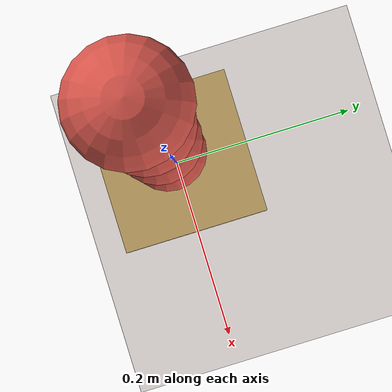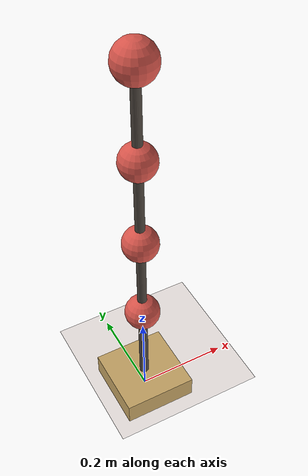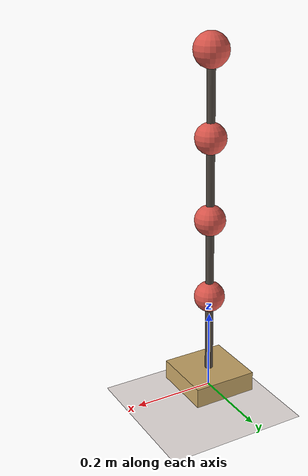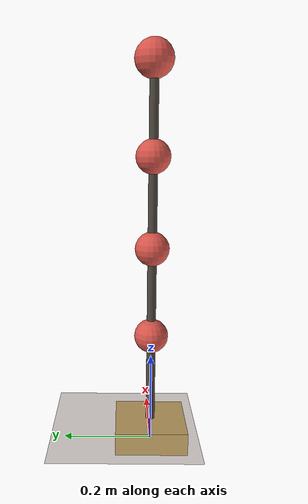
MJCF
<mujoco model="inverted_pendulum_tower">
  <compiler angle="radian" coordinate="local" autolimits="true"/>
  <option timestep="0.001" gravity="0 0 -9.81" integrator="implicitfast"/>

  <visual>
    <headlight diffuse="0 0 0" ambient="0.50 0.48 0.55" specular="0 0 0"/>
    <rgba haze="0.94 0.91 0.90 1"/>
    <global azimuth="120" elevation="-15" offwidth="1920" offheight="1080" fovy="38"/>
    <quality shadowsize="8192" offsamples="8"/>
    <map shadowclip="6" shadowscale="0.7"/>
  </visual>

  <asset>
    <texture type="skybox" builtin="flat"
             rgb1="0.74 0.68 0.86" rgb2="0.74 0.68 0.86"
             width="512" height="512" mark="none" markrgb="0 0 0"/>
    <material name="floor_mat" rgba="0.94 0.91 0.90 1" specular="0" shininess="0"/>
    <material name="base_mat" rgba="0.78 0.65 0.40 1" specular="0.1" shininess="0.1"/>
    <material name="rod_mat" rgba="0.30 0.27 0.24 1" specular="0.3" shininess="0.4"/>
    <material name="bob_mat" rgba="0.86 0.34 0.30 1" specular="0.4" shininess="0.45"/>
  </asset>

  <worldbody>
    <light pos="0 0 12" dir="-0.30 0.55 -1" directional="true" castshadow="true"
           diffuse="0.85 0.82 0.78" specular="0.15 0.15 0.15"/>
    <light pos="0 0 8" dir="0.40 -0.30 -1" directional="true" castshadow="false"
           diffuse="0.28 0.28 0.34" specular="0 0 0"/>

    <geom name="floor" type="plane" size="40 40 0.1" material="floor_mat"/>
    <geom type="box" pos="0 0 0.025" size="0.08 0.08 0.025" material="base_mat"/>

    <body name="link0" pos="0 0 0.05">
      <joint name="h0" type="hinge" axis="0 1 0" stiffness="1.8" damping="0.12"/>
      <geom type="capsule" fromto="0 0 0  0 0 0.20" size="0.010" material="rod_mat" mass="0.04"/>
      <geom type="sphere" pos="0 0 0.20" size="0.038" mass="0.12" material="bob_mat"/>
      <body name="link1" pos="0 0 0.20">
        <joint name="h1" type="hinge" axis="0 1 0" stiffness="1.8" damping="0.12"/>
        <geom type="capsule" fromto="0 0 0  0 0 0.20" size="0.010" material="rod_mat" mass="0.04"/>
        <geom type="sphere" pos="0 0 0.20" size="0.038" mass="0.12" material="bob_mat"/>
        <body name="link2" pos="0 0 0.20">
          <joint name="h2" type="hinge" axis="0 1 0" stiffness="1.8" damping="0.12"/>
          <geom type="capsule" fromto="0 0 0  0 0 0.20" size="0.010" material="rod_mat" mass="0.04"/>
          <geom type="sphere" pos="0 0 0.20" size="0.038" mass="0.12" material="bob_mat"/>
          <body name="link3" pos="0 0 0.20">
            <joint name="h3" type="hinge" axis="0 1 0" stiffness="1.8" damping="0.12"/>
            <geom type="capsule" fromto="0 0 0  0 0 0.20" size="0.010" material="rod_mat" mass="0.04"/>
            <geom type="sphere" pos="0 0 0.20" size="0.042" mass="0.14" material="bob_mat"/>
          </body>
        </body>
      </body>
    </body>

    <camera name="cam" pos="0.75 -2.20 0.85" fovy="40"
            xyaxes="0.985 0.158 0   -0.011 0.069 0.998"/>
  </worldbody>
</mujoco>
